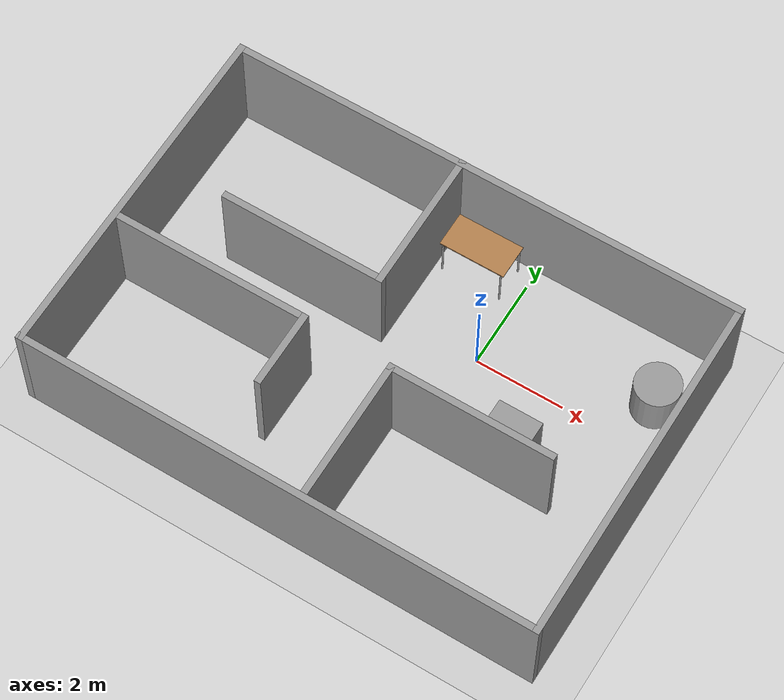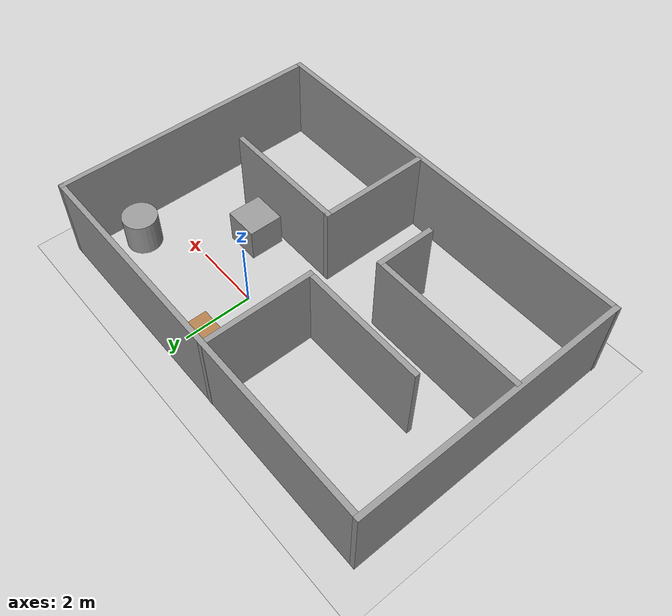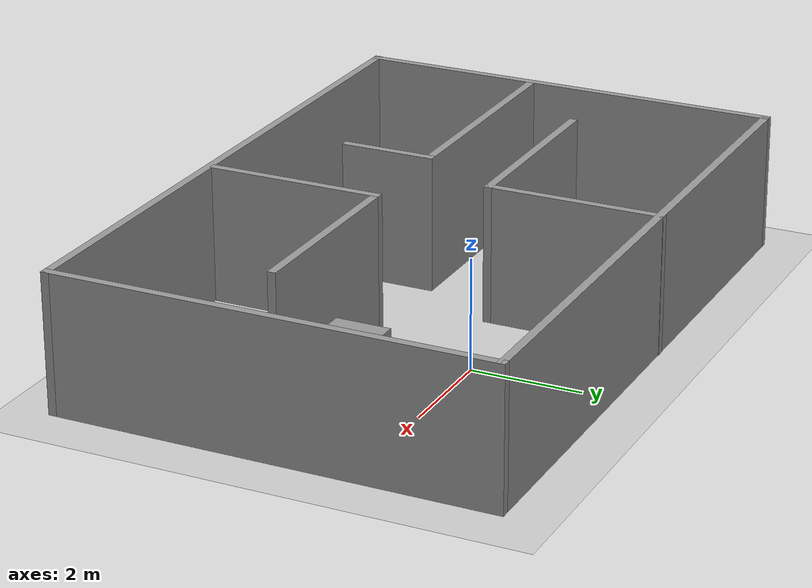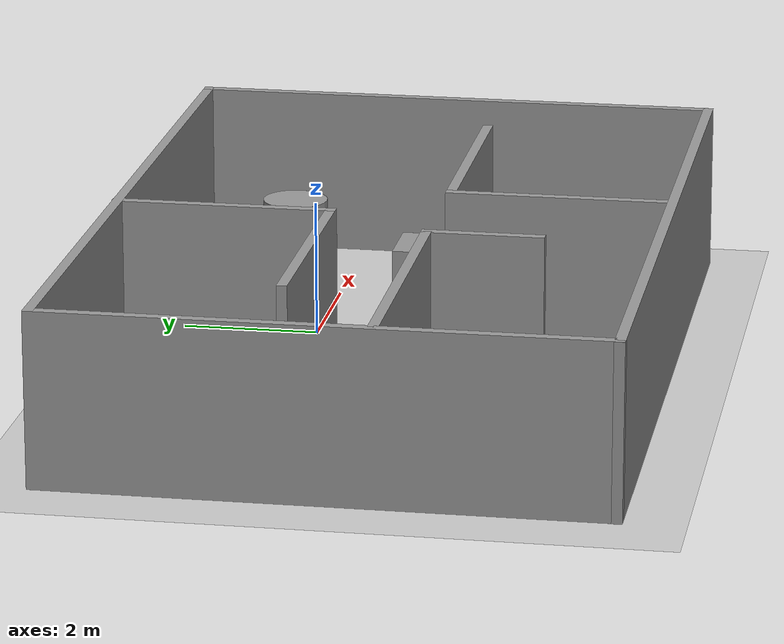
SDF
<sdf version="1.7">
 <world name="default">
  <light name="sun" type="directional">
   <pose>0 0 10 0 -0 0</pose>
   <diffuse>0.8 0.8 0.8 1</diffuse>
   <specular>0.2 0.2 0.2 1</specular>
   <attenuation>
    <range>1000</range>
    <constant>0.9</constant>
    <linear>0.01</linear>
    <quadratic>0.001</quadratic>
   </attenuation>
   <direction>-0.5 0.1 -0.9</direction>
   <spot><inner_angle>0</inner_angle><outer_angle>0</outer_angle><falloff>0</falloff></spot>
  </light>
  <model name="ground_plane">
   <static>1</static>
   <link name="link">
    <collision name="collision">
     <geometry><plane><normal>0 0 1</normal><size>100 100</size></plane></geometry>
     <surface><friction><ode><mu>100</mu><mu2>50</mu2></ode></friction></surface>
    </collision>
    <visual name="visual">
     <cast_shadows>0</cast_shadows>
     <geometry><plane><normal>0 0 1</normal><size>100 100</size></plane></geometry>
     <material>
      <script><uri>file://media/materials/scripts/gazebo.material</uri><name>Gazebo/Grey</name></script>
     </material>
    </visual>
   </link>
  </model>
  <gravity>0 0 -9.8</gravity>
  <magnetic_field>6e-06 2.3e-05 -4.2e-05</magnetic_field>
  <atmosphere type="adiabatic"/>
  <physics type="ode">
   <max_step_size>0.001</max_step_size>
   <real_time_factor>1</real_time_factor>
   <real_time_update_rate>1000</real_time_update_rate>
  </physics>
  <scene><ambient>0.4 0.4 0.4 1</ambient><background>0.7 0.7 0.7 1</background><shadows>1</shadows></scene>
  <audio><device>default</device></audio>
  <spherical_coordinates>
   <surface_model>EARTH_WGS84</surface_model>
   <latitude_deg>0</latitude_deg>
   <longitude_deg>0</longitude_deg>
   <elevation>0</elevation>
   <heading_deg>0</heading_deg>
  </spherical_coordinates>
  <model name="room">
   <pose>-1.41529 -1.39923 0 0 -0 0</pose>
   <link name="Wall_1">
    <collision name="Wall_1_Collision">
     <geometry><box><size>0.16 0.15 2.5</size></box></geometry>
     <pose>0 0 1.25 0 -0 0</pose>
    </collision>
    <visual name="Wall_1_Visual">
     <pose>0 0 1.25 0 -0 0</pose>
     <geometry><box><size>0.16 0.15 2.5</size></box></geometry>
     <material>
      <script><uri>file://media/materials/scripts/gazebo.material</uri><name>Gazebo/Grey</name></script>
      <ambient>1 1 1 1</ambient>
     </material>
     <meta><layer>0</layer></meta>
    </visual>
    <pose>-5.8 -3.92864 0 0 -0 0</pose>
   </link>
   <link name="Wall_10">
    <collision name="Wall_10_Collision">
     <geometry><box><size>4.5 0.15 2.5</size></box></geometry>
     <pose>0 0 1.25 0 -0 0</pose>
    </collision>
    <visual name="Wall_10_Visual">
     <pose>0 0 1.25 0 -0 0</pose>
     <geometry><box><size>4.5 0.15 2.5</size></box></geometry>
     <material>
      <script><uri>file://media/materials/scripts/gazebo.material</uri><name>Gazebo/Grey</name></script>
      <ambient>1 1 1 1</ambient>
     </material>
     <meta><layer>0</layer></meta>
    </visual>
    <pose>-3.52679 -0.682858 0 0 -0 0</pose>
   </link>
   <link name="Wall_11">
    <collision name="Wall_11_Collision">
     <geometry><box><size>1.75 0.15 2.5</size></box></geometry>
     <pose>0 0 1.25 0 -0 0</pose>
    </collision>
    <visual name="Wall_11_Visual">
     <pose>0 0 1.25 0 -0 0</pose>
     <geometry><box><size>1.75 0.15 2.5</size></box></geometry>
     <material>
      <script><uri>file://media/materials/scripts/gazebo.material</uri><name>Gazebo/Grey</name></script>
      <ambient>1 1 1 1</ambient>
     </material>
     <meta><layer>0</layer></meta>
    </visual>
    <pose>-1.35179 -1.48286 0 0 -0 -1.5708</pose>
   </link>
   <link name="Wall_13">
    <collision name="Wall_13_Collision">
     <geometry><box><size>3.25 0.15 2.5</size></box></geometry>
     <pose>0 0 1.25 0 -0 0</pose>
    </collision>
    <visual name="Wall_13_Visual">
     <pose>0 0 1.25 0 -0 0</pose>
     <geometry><box><size>3.25 0.15 2.5</size></box></geometry>
     <material>
      <script><uri>file://media/materials/scripts/gazebo.material</uri><name>Gazebo/Grey</name></script>
      <ambient>1 1 1 1</ambient>
     </material>
     <meta><layer>0</layer></meta>
    </visual>
    <pose>0.662068 -2.26867 0 0 -0 1.5708</pose>
   </link>
   <link name="Wall_14">
    <collision name="Wall_14_Collision">
     <geometry><box><size>3.75 0.15 2.5</size></box></geometry>
     <pose>0 0 1.25 0 -0 0</pose>
    </collision>
    <visual name="Wall_14_Visual">
     <pose>0 0 1.25 0 -0 0</pose>
     <geometry><box><size>3.75 0.15 2.5</size></box></geometry>
     <material>
      <script><uri>file://media/materials/scripts/gazebo.material</uri><name>Gazebo/Grey</name></script>
      <ambient>1 1 1 1</ambient>
     </material>
     <meta><layer>0</layer></meta>
    </visual>
    <pose>2.46207 -0.718674 0 0 -0 0</pose>
   </link>
   <link name="Wall_2">
    <collision name="Wall_2_Collision">
     <geometry><box><size>8 0.15 2.5</size></box></geometry>
     <pose>0 0 1.25 0 -0 0</pose>
    </collision>
    <visual name="Wall_2_Visual">
     <pose>0 0 1.25 0 -0 0</pose>
     <geometry><box><size>8 0.15 2.5</size></box></geometry>
     <material>
      <script><uri>file://media/materials/scripts/gazebo.material</uri><name>Gazebo/Grey</name></script>
      <ambient>1 1 1 1</ambient>
     </material>
     <meta><layer>0</layer></meta>
    </visual>
    <pose>-5.795 -0.003636 0 0 -0 1.5708</pose>
   </link>
   <link name="Wall_3">
    <collision name="Wall_3_Collision">
     <geometry><box><size>11.75 0.15 2.5</size></box></geometry>
     <pose>0 0 1.25 0 -0 0</pose>
    </collision>
    <visual name="Wall_3_Visual">
     <pose>0 0 1.25 0 -0 0</pose>
     <geometry><box><size>11.75 0.15 2.5</size></box></geometry>
     <material>
      <script><uri>file://media/materials/scripts/gazebo.material</uri><name>Gazebo/Grey</name></script>
      <ambient>1 1 1 1</ambient>
     </material>
     <meta><layer>0</layer></meta>
    </visual>
    <pose>0.005 3.92136 0 0 -0 0</pose>
   </link>
   <link name="Wall_4">
    <collision name="Wall_4_Collision">
     <geometry><box><size>8 0.15 2.5</size></box></geometry>
     <pose>0 0 1.25 0 -0 0</pose>
    </collision>
    <visual name="Wall_4_Visual">
     <pose>0 0 1.25 0 -0 0</pose>
     <geometry><box><size>8 0.15 2.5</size></box></geometry>
     <material>
      <script><uri>file://media/materials/scripts/gazebo.material</uri><name>Gazebo/Grey</name></script>
      <ambient>1 1 1 1</ambient>
     </material>
     <meta><layer>0</layer></meta>
    </visual>
    <pose>5.805 -0.003636 0 0 -0 -1.5708</pose>
   </link>
   <link name="Wall_5">
    <collision name="Wall_5_Collision">
     <geometry><box><size>11.75 0.15 2.5</size></box></geometry>
     <pose>0 0 1.25 0 -0 0</pose>
    </collision>
    <visual name="Wall_5_Visual">
     <pose>0 0 1.25 0 -0 0</pose>
     <geometry><box><size>11.75 0.15 2.5</size></box></geometry>
     <material>
      <script><uri>file://media/materials/scripts/gazebo.material</uri><name>Gazebo/Grey</name></script>
      <ambient>1 1 1 1</ambient>
     </material>
     <meta><layer>0</layer></meta>
    </visual>
    <pose>0.005 -3.92864 0 0 -0 3.14159</pose>
   </link>
   <link name="Wall_7">
    <collision name="Wall_7_Collision">
     <geometry><box><size>3.25 0.15 2.5</size></box></geometry>
     <pose>0 0 1.25 0 -0 0</pose>
    </collision>
    <visual name="Wall_7_Visual">
     <pose>0 0 1.25 0 -0 0</pose>
     <geometry><box><size>3.25 0.15 2.5</size></box></geometry>
     <material>
      <script><uri>file://media/materials/scripts/gazebo.material</uri><name>Gazebo/Grey</name></script>
      <ambient>1 1 1 1</ambient>
     </material>
     <meta><layer>0</layer></meta>
    </visual>
    <pose>-0.536921 2.37864 0 0 -0 -1.5708</pose>
   </link>
   <link name="Wall_8">
    <collision name="Wall_8_Collision">
     <geometry><box><size>3.75 0.15 2.5</size></box></geometry>
     <pose>0 0 1.25 0 -0 0</pose>
    </collision>
    <visual name="Wall_8_Visual">
     <pose>0 0 1.25 0 -0 0</pose>
     <geometry><box><size>3.75 0.15 2.5</size></box></geometry>
     <material>
      <script><uri>file://media/materials/scripts/gazebo.material</uri><name>Gazebo/Grey</name></script>
      <ambient>1 1 1 1</ambient>
     </material>
     <meta><layer>0</layer></meta>
    </visual>
    <pose>-2.33692 0.828636 0 0 -0 3.14159</pose>
   </link>
   <static>1</static>
  </model>
  <model name="table">
   <static>1</static>
   <link name="link">
    <collision name="surface">
     <pose>0 0 1 0 -0 0</pose>
     <geometry><box><size>1.5 0.8 0.03</size></box></geometry>
     <surface><friction><ode><mu>0.6</mu><mu2>0.6</mu2></ode></friction></surface>
    </collision>
    <visual name="visual1">
     <pose>0 0 1 0 -0 0</pose>
     <geometry><box><size>1.5 0.8 0.03</size></box></geometry>
     <material>
      <script><uri>file://media/materials/scripts/gazebo.material</uri><name>Gazebo/Wood</name></script>
     </material>
    </visual>
    <collision name="front_left_leg">
     <pose>0.68 0.38 0.5 0 -0 0</pose>
     <geometry><cylinder><radius>0.02</radius><length>1</length></cylinder></geometry>
    </collision>
    <visual name="front_left_leg">
     <pose>0.68 0.38 0.5 0 -0 0</pose>
     <geometry><cylinder><radius>0.02</radius><length>1</length></cylinder></geometry>
     <material>
      <script><uri>file://media/materials/scripts/gazebo.material</uri><name>Gazebo/Grey</name></script>
     </material>
    </visual>
    <collision name="front_right_leg">
     <pose>0.68 -0.38 0.5 0 -0 0</pose>
     <geometry><cylinder><radius>0.02</radius><length>1</length></cylinder></geometry>
    </collision>
    <visual name="front_right_leg">
     <pose>0.68 -0.38 0.5 0 -0 0</pose>
     <geometry><cylinder><radius>0.02</radius><length>1</length></cylinder></geometry>
     <material>
      <script><uri>file://media/materials/scripts/gazebo.material</uri><name>Gazebo/Grey</name></script>
     </material>
    </visual>
    <collision name="back_right_leg">
     <pose>-0.68 -0.38 0.5 0 -0 0</pose>
     <geometry><cylinder><radius>0.02</radius><length>1</length></cylinder></geometry>
    </collision>
    <visual name="back_right_leg">
     <pose>-0.68 -0.38 0.5 0 -0 0</pose>
     <geometry><cylinder><radius>0.02</radius><length>1</length></cylinder></geometry>
     <material>
      <script><uri>file://media/materials/scripts/gazebo.material</uri><name>Gazebo/Grey</name></script>
     </material>
    </visual>
    <collision name="back_left_leg">
     <pose>-0.68 0.38 0.5 0 -0 0</pose>
     <geometry><cylinder><radius>0.02</radius><length>1</length></cylinder></geometry>
    </collision>
    <visual name="back_left_leg">
     <pose>-0.68 0.38 0.5 0 -0 0</pose>
     <geometry><cylinder><radius>0.02</radius><length>1</length></cylinder></geometry>
     <material>
      <script><uri>file://media/materials/scripts/gazebo.material</uri><name>Gazebo/Grey</name></script>
     </material>
    </visual>
   </link>
   <pose>-1.03373 1.86242 0 0 -0 0</pose>
  </model>
  <model name="unit_box">
   <pose>1.55536 -1.45263 0.5 0 -0 0</pose>
   <link name="link">
    <inertial>
     <mass>1</mass>
     <inertia>
      <ixx>0.166667</ixx>
      <ixy>0</ixy>
      <ixz>0</ixz>
      <iyy>0.166667</iyy>
      <iyz>0</iyz>
      <izz>0.166667</izz>
     </inertia>
    </inertial>
    <collision name="collision"><geometry><box><size>1 1 1</size></box></geometry></collision>
    <visual name="visual">
     <geometry><box><size>1 1 1</size></box></geometry>
     <material>
      <script><name>Gazebo/Grey</name><uri>file://media/materials/scripts/gazebo.material</uri></script>
     </material>
    </visual>
   </link>
  </model>
  <model name="unit_cylinder">
   <pose>3.55585 0.994515 0.5 0 -0 0</pose>
   <link name="link">
    <inertial>
     <mass>1</mass>
     <inertia><ixx>0.145833</ixx><ixy>0</ixy><ixz>0</ixz><iyy>0.145833</iyy><iyz>0</iyz><izz>0.125</izz></inertia>
    </inertial>
    <collision name="collision">
     <geometry><cylinder><radius>0.5</radius><length>1</length></cylinder></geometry>
    </collision>
    <visual name="visual">
     <geometry><cylinder><radius>0.5</radius><length>1</length></cylinder></geometry>
     <material>
      <script><name>Gazebo/Grey</name><uri>file://media/materials/scripts/gazebo.material</uri></script>
     </material>
    </visual>
   </link>
  </model>
 </world>
</sdf>
